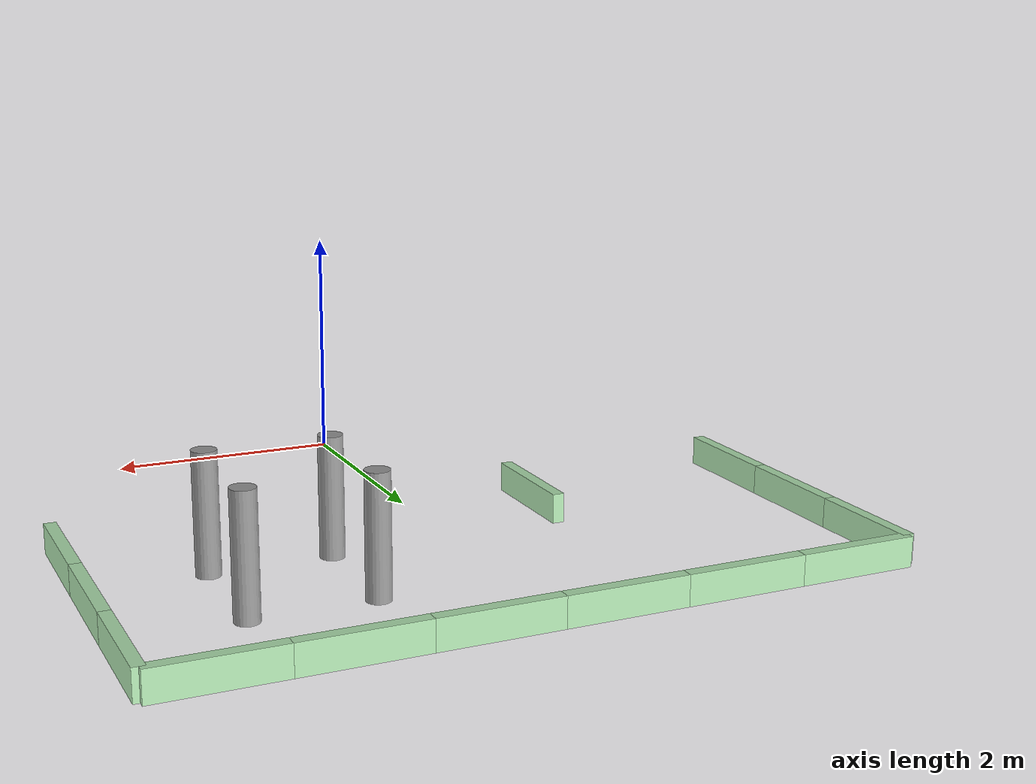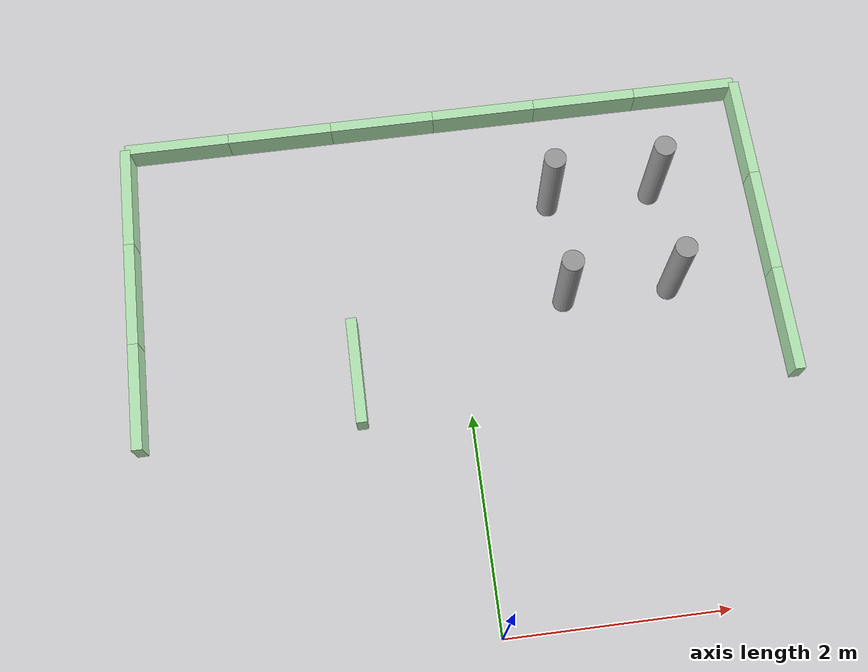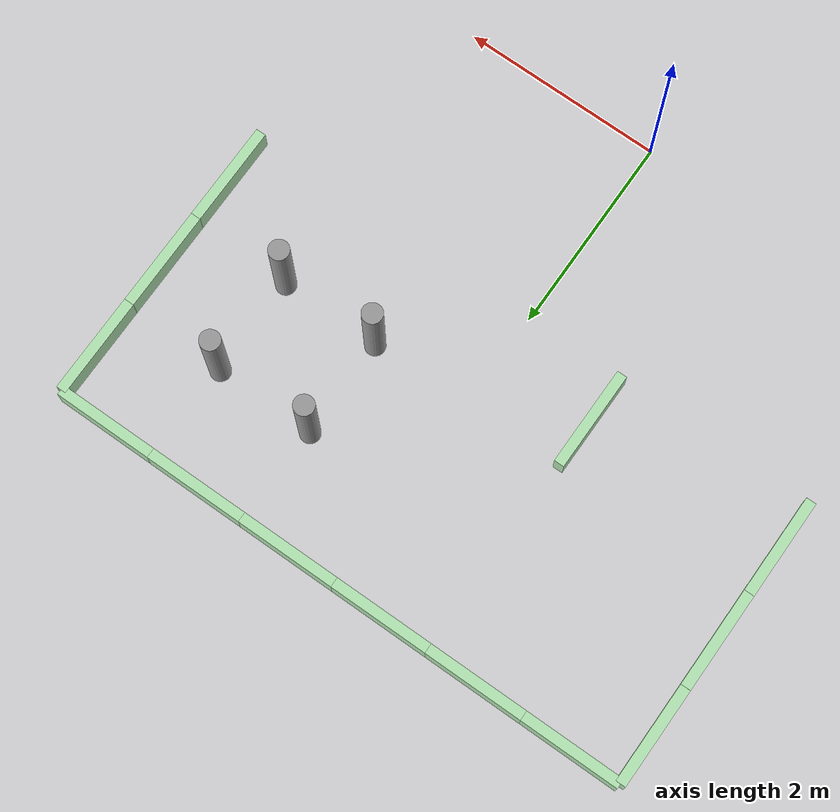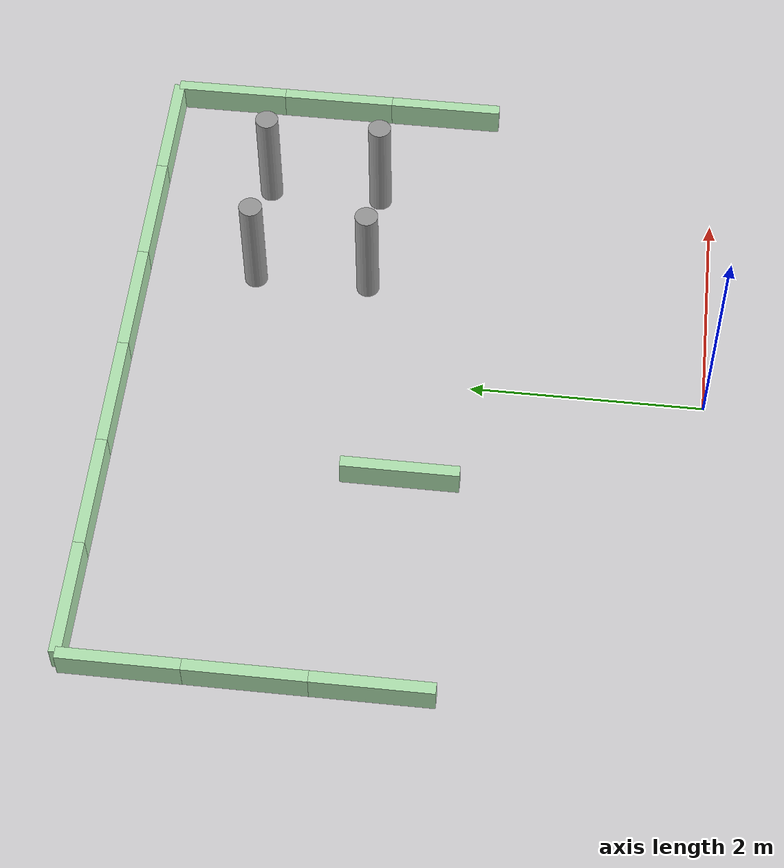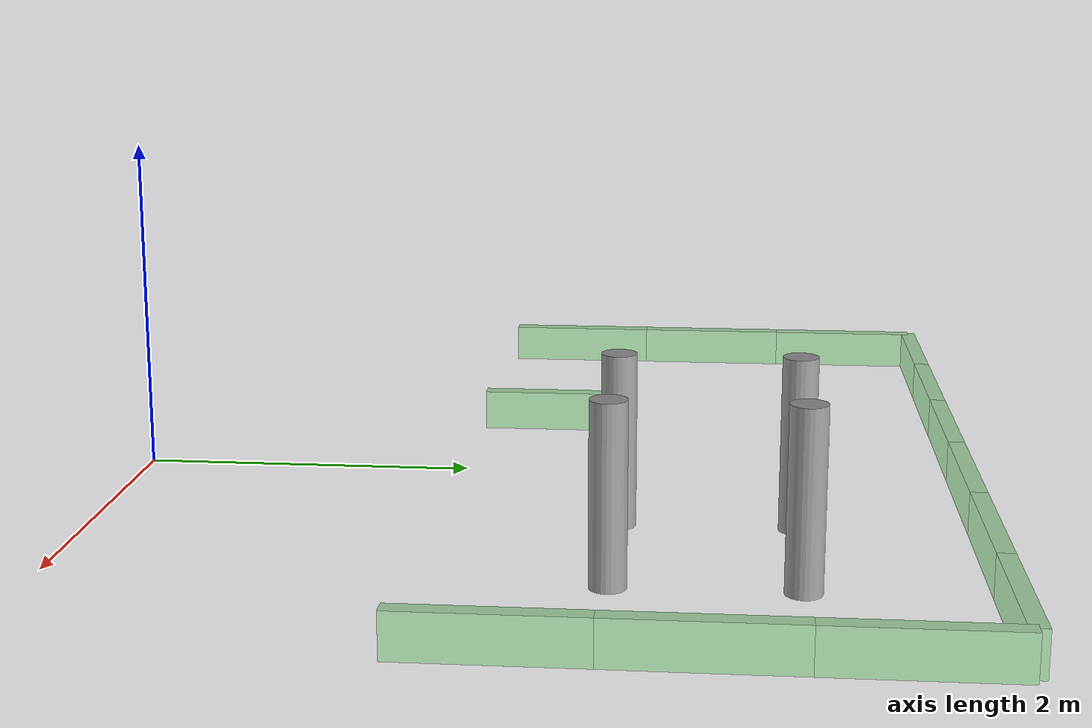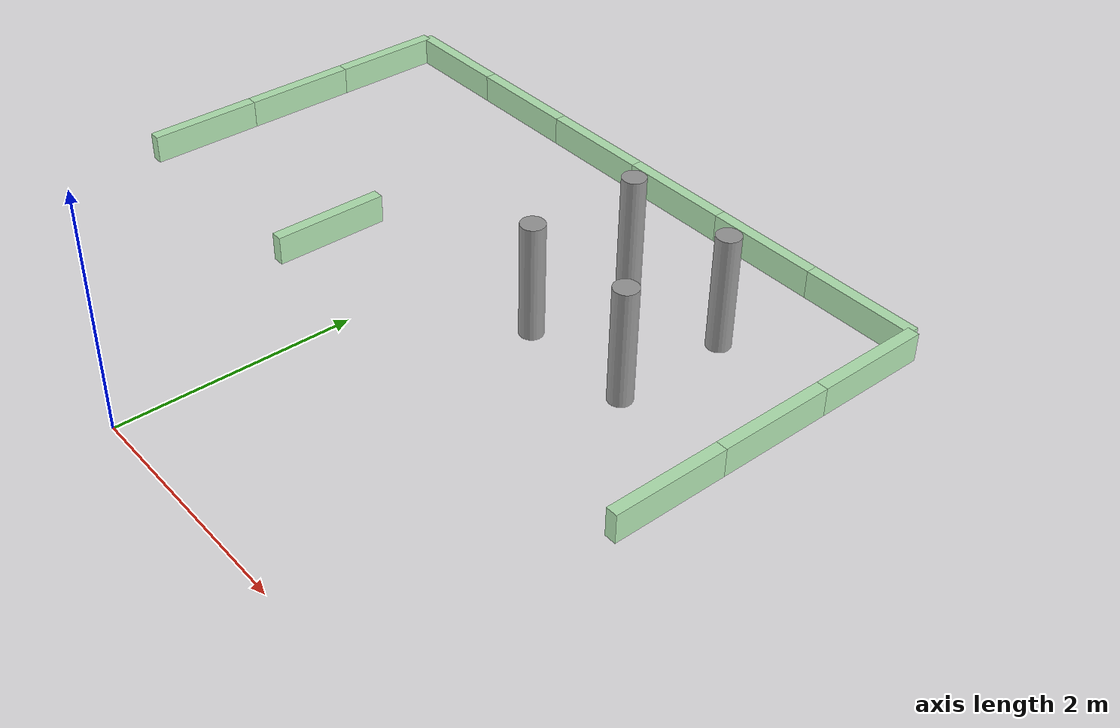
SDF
<sdf version="1.7">
 <world name="default">
  <model name="wall_100_25h_1_clone_9_clone_clone_9">
   <link name="link">
    <inertial>
     <mass>1</mass>
     <inertia>
      <ixx>0.166667</ixx>
      <ixy>0</ixy>
      <ixz>0</ixz>
      <iyy>0.166667</iyy>
      <iyz>0</iyz>
      <izz>0.166667</izz>
     </inertia>
    </inertial>
    <visual name="visual">
     <geometry><box><size>1 0.1 0.25</size></box></geometry>
     <material>
      <script><name>Gazebo/Grey</name><uri>file://media/materials/scripts/gazebo.material</uri></script>
      <ambient>0.3 0.5 0.3 1</ambient>
      <diffuse>0.7 0.9 0.7 1</diffuse>
      <specular>0.01 0.02 0.01 1</specular>
      <emissive>0 0 0 1</emissive>
      <lighting>1</lighting>
      <shader type="vertex"><normal_map>__default__</normal_map></shader>
     </material>
    </visual>
    <collision name="collision">
     <geometry><box><size>1 0.1 0.25</size></box></geometry>
     <surface>
      <friction>
       <ode><mu>1</mu><mu2>1</mu2><fdir1>0 0 0</fdir1><slip1>0</slip1><slip2>0</slip2></ode>
       <torsional>
        <coefficient>1</coefficient>
        <patch_radius>0</patch_radius>
        <surface_radius>0</surface_radius>
        <use_patch_radius>1</use_patch_radius>
        <ode><slip>0</slip></ode>
       </torsional>
      </friction>
      <bounce><restitution_coefficient>0</restitution_coefficient><threshold>1e+06</threshold></bounce>
      <contact>
       <collide_without_contact>0</collide_without_contact>
       <collide_without_contact_bitmask>1</collide_without_contact_bitmask>
       <collide_bitmask>1</collide_bitmask>
       <ode>
        <soft_cfm>0</soft_cfm>
        <soft_erp>0.2</soft_erp>
        <kp>1e+13</kp>
        <kd>1</kd>
        <max_vel>0.01</max_vel>
        <min_depth>0</min_depth>
       </ode>
       <bullet>
        <split_impulse>1</split_impulse>
        <split_impulse_penetration_threshold>-0.01</split_impulse_penetration_threshold>
        <soft_cfm>0</soft_cfm>
        <soft_erp>0.2</soft_erp>
        <kp>1e+13</kp>
        <kd>1</kd>
       </bullet>
      </contact>
     </surface>
    </collision>
   </link>
   <static>1</static>
   <pose>-1 2.5 0.125 0 0.000404 -1.57111</pose>
  </model>
  <model name="wall_100_25h_1_clone_9_clone_clone_13">
   <link name="link">
    <inertial>
     <mass>1</mass>
     <inertia>
      <ixx>0.166667</ixx>
      <ixy>0</ixy>
      <ixz>0</ixz>
      <iyy>0.166667</iyy>
      <iyz>0</iyz>
      <izz>0.166667</izz>
     </inertia>
    </inertial>
    <visual name="visual">
     <geometry><box><size>1 0.1 0.25</size></box></geometry>
     <material>
      <script><name>Gazebo/Grey</name><uri>file://media/materials/scripts/gazebo.material</uri></script>
      <ambient>0.3 0.5 0.3 1</ambient>
      <diffuse>0.7 0.9 0.7 1</diffuse>
      <specular>0.01 0.02 0.01 1</specular>
      <emissive>0 0 0 1</emissive>
      <lighting>1</lighting>
      <shader type="vertex"><normal_map>__default__</normal_map></shader>
     </material>
    </visual>
    <collision name="collision">
     <geometry><box><size>1 0.1 0.25</size></box></geometry>
     <surface>
      <friction>
       <ode><mu>1</mu><mu2>1</mu2><fdir1>0 0 0</fdir1><slip1>0</slip1><slip2>0</slip2></ode>
       <torsional>
        <coefficient>1</coefficient>
        <patch_radius>0</patch_radius>
        <surface_radius>0</surface_radius>
        <use_patch_radius>1</use_patch_radius>
        <ode><slip>0</slip></ode>
       </torsional>
      </friction>
      <bounce><restitution_coefficient>0</restitution_coefficient><threshold>1e+06</threshold></bounce>
      <contact>
       <collide_without_contact>0</collide_without_contact>
       <collide_without_contact_bitmask>1</collide_without_contact_bitmask>
       <collide_bitmask>1</collide_bitmask>
       <ode>
        <soft_cfm>0</soft_cfm>
        <soft_erp>0.2</soft_erp>
        <kp>1e+13</kp>
        <kd>1</kd>
        <max_vel>0.01</max_vel>
        <min_depth>0</min_depth>
       </ode>
       <bullet>
        <split_impulse>1</split_impulse>
        <split_impulse_penetration_threshold>-0.01</split_impulse_penetration_threshold>
        <soft_cfm>0</soft_cfm>
        <soft_erp>0.2</soft_erp>
        <kp>1e+13</kp>
        <kd>1</kd>
       </bullet>
      </contact>
     </surface>
    </collision>
   </link>
   <static>1</static>
   <pose>-3 2.5 0.125 0 0.000404 -1.57111</pose>
  </model>
  <model name="wall_100_25h_1_clone_9_clone_clone_15">
   <link name="link">
    <inertial>
     <mass>1</mass>
     <inertia>
      <ixx>0.166667</ixx>
      <ixy>0</ixy>
      <ixz>0</ixz>
      <iyy>0.166667</iyy>
      <iyz>0</iyz>
      <izz>0.166667</izz>
     </inertia>
    </inertial>
    <visual name="visual">
     <geometry><box><size>1 0.1 0.25</size></box></geometry>
     <material>
      <script><name>Gazebo/Grey</name><uri>file://media/materials/scripts/gazebo.material</uri></script>
      <ambient>0.3 0.5 0.3 1</ambient>
      <diffuse>0.7 0.9 0.7 1</diffuse>
      <specular>0.01 0.02 0.01 1</specular>
      <emissive>0 0 0 1</emissive>
      <lighting>1</lighting>
      <shader type="vertex"><normal_map>__default__</normal_map></shader>
     </material>
    </visual>
    <collision name="collision">
     <geometry><box><size>1 0.1 0.25</size></box></geometry>
     <surface>
      <friction>
       <ode><mu>1</mu><mu2>1</mu2><fdir1>0 0 0</fdir1><slip1>0</slip1><slip2>0</slip2></ode>
       <torsional>
        <coefficient>1</coefficient>
        <patch_radius>0</patch_radius>
        <surface_radius>0</surface_radius>
        <use_patch_radius>1</use_patch_radius>
        <ode><slip>0</slip></ode>
       </torsional>
      </friction>
      <bounce><restitution_coefficient>0</restitution_coefficient><threshold>1e+06</threshold></bounce>
      <contact>
       <collide_without_contact>0</collide_without_contact>
       <collide_without_contact_bitmask>1</collide_without_contact_bitmask>
       <collide_bitmask>1</collide_bitmask>
       <ode>
        <soft_cfm>0</soft_cfm>
        <soft_erp>0.2</soft_erp>
        <kp>1e+13</kp>
        <kd>1</kd>
        <max_vel>0.01</max_vel>
        <min_depth>0</min_depth>
       </ode>
       <bullet>
        <split_impulse>1</split_impulse>
        <split_impulse_penetration_threshold>-0.01</split_impulse_penetration_threshold>
        <soft_cfm>0</soft_cfm>
        <soft_erp>0.2</soft_erp>
        <kp>1e+13</kp>
        <kd>1</kd>
       </bullet>
      </contact>
     </surface>
    </collision>
   </link>
   <static>1</static>
   <pose>3 2.5 0.125 0 0.000404 -1.57111</pose>
  </model>
  <model name="wall_100_25h_1_clone_9_clone_clone_16">
   <link name="link">
    <inertial>
     <mass>1</mass>
     <inertia>
      <ixx>0.166667</ixx>
      <ixy>0</ixy>
      <ixz>0</ixz>
      <iyy>0.166667</iyy>
      <iyz>0</iyz>
      <izz>0.166667</izz>
     </inertia>
    </inertial>
    <visual name="visual">
     <geometry><box><size>1 0.1 0.25</size></box></geometry>
     <material>
      <script><name>Gazebo/Grey</name><uri>file://media/materials/scripts/gazebo.material</uri></script>
      <ambient>0.3 0.5 0.3 1</ambient>
      <diffuse>0.7 0.9 0.7 1</diffuse>
      <specular>0.01 0.02 0.01 1</specular>
      <emissive>0 0 0 1</emissive>
      <lighting>1</lighting>
      <shader type="vertex"><normal_map>__default__</normal_map></shader>
     </material>
    </visual>
    <collision name="collision">
     <geometry><box><size>1 0.1 0.25</size></box></geometry>
     <surface>
      <friction>
       <ode><mu>1</mu><mu2>1</mu2><fdir1>0 0 0</fdir1><slip1>0</slip1><slip2>0</slip2></ode>
       <torsional>
        <coefficient>1</coefficient>
        <patch_radius>0</patch_radius>
        <surface_radius>0</surface_radius>
        <use_patch_radius>1</use_patch_radius>
        <ode><slip>0</slip></ode>
       </torsional>
      </friction>
      <bounce><restitution_coefficient>0</restitution_coefficient><threshold>1e+06</threshold></bounce>
      <contact>
       <collide_without_contact>0</collide_without_contact>
       <collide_without_contact_bitmask>1</collide_without_contact_bitmask>
       <collide_bitmask>1</collide_bitmask>
       <ode>
        <soft_cfm>0</soft_cfm>
        <soft_erp>0.2</soft_erp>
        <kp>1e+13</kp>
        <kd>1</kd>
        <max_vel>0.01</max_vel>
        <min_depth>0</min_depth>
       </ode>
       <bullet>
        <split_impulse>1</split_impulse>
        <split_impulse_penetration_threshold>-0.01</split_impulse_penetration_threshold>
        <soft_cfm>0</soft_cfm>
        <soft_erp>0.2</soft_erp>
        <kp>1e+13</kp>
        <kd>1</kd>
       </bullet>
      </contact>
     </surface>
    </collision>
   </link>
   <static>1</static>
   <pose>3 3.5 0.125 0 0.000404 -1.57111</pose>
  </model>
  <model name="wall_100_25h_1_clone_9_clone_clone_17">
   <link name="link">
    <inertial>
     <mass>1</mass>
     <inertia>
      <ixx>0.166667</ixx>
      <ixy>0</ixy>
      <ixz>0</ixz>
      <iyy>0.166667</iyy>
      <iyz>0</iyz>
      <izz>0.166667</izz>
     </inertia>
    </inertial>
    <visual name="visual">
     <geometry><box><size>1 0.1 0.25</size></box></geometry>
     <material>
      <script><name>Gazebo/Grey</name><uri>file://media/materials/scripts/gazebo.material</uri></script>
      <ambient>0.3 0.5 0.3 1</ambient>
      <diffuse>0.7 0.9 0.7 1</diffuse>
      <specular>0.01 0.02 0.01 1</specular>
      <emissive>0 0 0 1</emissive>
      <lighting>1</lighting>
      <shader type="vertex"><normal_map>__default__</normal_map></shader>
     </material>
    </visual>
    <collision name="collision">
     <geometry><box><size>1 0.1 0.25</size></box></geometry>
     <surface>
      <friction>
       <ode><mu>1</mu><mu2>1</mu2><fdir1>0 0 0</fdir1><slip1>0</slip1><slip2>0</slip2></ode>
       <torsional>
        <coefficient>1</coefficient>
        <patch_radius>0</patch_radius>
        <surface_radius>0</surface_radius>
        <use_patch_radius>1</use_patch_radius>
        <ode><slip>0</slip></ode>
       </torsional>
      </friction>
      <bounce><restitution_coefficient>0</restitution_coefficient><threshold>1e+06</threshold></bounce>
      <contact>
       <collide_without_contact>0</collide_without_contact>
       <collide_without_contact_bitmask>1</collide_without_contact_bitmask>
       <collide_bitmask>1</collide_bitmask>
       <ode>
        <soft_cfm>0</soft_cfm>
        <soft_erp>0.2</soft_erp>
        <kp>1e+13</kp>
        <kd>1</kd>
        <max_vel>0.01</max_vel>
        <min_depth>0</min_depth>
       </ode>
       <bullet>
        <split_impulse>1</split_impulse>
        <split_impulse_penetration_threshold>-0.01</split_impulse_penetration_threshold>
        <soft_cfm>0</soft_cfm>
        <soft_erp>0.2</soft_erp>
        <kp>1e+13</kp>
        <kd>1</kd>
       </bullet>
      </contact>
     </surface>
    </collision>
   </link>
   <static>1</static>
   <pose>3 4.5 0.125 0 0.000404 -1.57111</pose>
  </model>
  <model name="wall_100_25h_1_clone_7_clone">
   <link name="link">
    <inertial>
     <mass>1</mass>
     <inertia>
      <ixx>0.166667</ixx>
      <ixy>0</ixy>
      <ixz>0</ixz>
      <iyy>0.166667</iyy>
      <iyz>0</iyz>
      <izz>0.166667</izz>
     </inertia>
    </inertial>
    <visual name="visual">
     <geometry><box><size>1 0.1 0.25</size></box></geometry>
     <material>
      <script><name>Gazebo/Grey</name><uri>file://media/materials/scripts/gazebo.material</uri></script>
      <ambient>0.3 0.5 0.3 1</ambient>
      <diffuse>0.7 0.9 0.7 1</diffuse>
      <specular>0.01 0.02 0.01 1</specular>
      <emissive>0 0 0 1</emissive>
      <lighting>1</lighting>
      <shader type="vertex"><normal_map>__default__</normal_map></shader>
     </material>
    </visual>
    <collision name="collision">
     <geometry><box><size>1 0.1 0.25</size></box></geometry>
     <surface>
      <friction>
       <ode><mu>1</mu><mu2>1</mu2><fdir1>0 0 0</fdir1><slip1>0</slip1><slip2>0</slip2></ode>
       <torsional>
        <coefficient>1</coefficient>
        <patch_radius>0</patch_radius>
        <surface_radius>0</surface_radius>
        <use_patch_radius>1</use_patch_radius>
        <ode><slip>0</slip></ode>
       </torsional>
      </friction>
      <bounce><restitution_coefficient>0</restitution_coefficient><threshold>1e+06</threshold></bounce>
      <contact>
       <collide_without_contact>0</collide_without_contact>
       <collide_without_contact_bitmask>1</collide_without_contact_bitmask>
       <collide_bitmask>1</collide_bitmask>
       <ode>
        <soft_cfm>0</soft_cfm>
        <soft_erp>0.2</soft_erp>
        <kp>1e+13</kp>
        <kd>1</kd>
        <max_vel>0.01</max_vel>
        <min_depth>0</min_depth>
       </ode>
       <bullet>
        <split_impulse>1</split_impulse>
        <split_impulse_penetration_threshold>-0.01</split_impulse_penetration_threshold>
        <soft_cfm>0</soft_cfm>
        <soft_erp>0.2</soft_erp>
        <kp>1e+13</kp>
        <kd>1</kd>
       </bullet>
      </contact>
     </surface>
    </collision>
   </link>
   <static>1</static>
   <pose>2.5 5 0.125 0.000404 -0 0</pose>
  </model>
  <model name="wall_100_25h_1_clone_7_clone_0">
   <link name="link">
    <inertial>
     <mass>1</mass>
     <inertia>
      <ixx>0.166667</ixx>
      <ixy>0</ixy>
      <ixz>0</ixz>
      <iyy>0.166667</iyy>
      <iyz>0</iyz>
      <izz>0.166667</izz>
     </inertia>
    </inertial>
    <visual name="visual">
     <geometry><box><size>1 0.1 0.25</size></box></geometry>
     <material>
      <script><name>Gazebo/Grey</name><uri>file://media/materials/scripts/gazebo.material</uri></script>
      <ambient>0.3 0.5 0.3 1</ambient>
      <diffuse>0.7 0.9 0.7 1</diffuse>
      <specular>0.01 0.02 0.01 1</specular>
      <emissive>0 0 0 1</emissive>
      <lighting>1</lighting>
      <shader type="vertex"><normal_map>__default__</normal_map></shader>
     </material>
    </visual>
    <collision name="collision">
     <geometry><box><size>1 0.1 0.25</size></box></geometry>
     <surface>
      <friction>
       <ode><mu>1</mu><mu2>1</mu2><fdir1>0 0 0</fdir1><slip1>0</slip1><slip2>0</slip2></ode>
       <torsional>
        <coefficient>1</coefficient>
        <patch_radius>0</patch_radius>
        <surface_radius>0</surface_radius>
        <use_patch_radius>1</use_patch_radius>
        <ode><slip>0</slip></ode>
       </torsional>
      </friction>
      <bounce><restitution_coefficient>0</restitution_coefficient><threshold>1e+06</threshold></bounce>
      <contact>
       <collide_without_contact>0</collide_without_contact>
       <collide_without_contact_bitmask>1</collide_without_contact_bitmask>
       <collide_bitmask>1</collide_bitmask>
       <ode>
        <soft_cfm>0</soft_cfm>
        <soft_erp>0.2</soft_erp>
        <kp>1e+13</kp>
        <kd>1</kd>
        <max_vel>0.01</max_vel>
        <min_depth>0</min_depth>
       </ode>
       <bullet>
        <split_impulse>1</split_impulse>
        <split_impulse_penetration_threshold>-0.01</split_impulse_penetration_threshold>
        <soft_cfm>0</soft_cfm>
        <soft_erp>0.2</soft_erp>
        <kp>1e+13</kp>
        <kd>1</kd>
       </bullet>
      </contact>
     </surface>
    </collision>
   </link>
   <static>1</static>
   <pose>1.5 5 0.125 0.000404 -0 0</pose>
  </model>
  <model name="wall_100_25h_1_clone_7_clone_1">
   <link name="link">
    <inertial>
     <mass>1</mass>
     <inertia>
      <ixx>0.166667</ixx>
      <ixy>0</ixy>
      <ixz>0</ixz>
      <iyy>0.166667</iyy>
      <iyz>0</iyz>
      <izz>0.166667</izz>
     </inertia>
    </inertial>
    <visual name="visual">
     <geometry><box><size>1 0.1 0.25</size></box></geometry>
     <material>
      <script><name>Gazebo/Grey</name><uri>file://media/materials/scripts/gazebo.material</uri></script>
      <ambient>0.3 0.5 0.3 1</ambient>
      <diffuse>0.7 0.9 0.7 1</diffuse>
      <specular>0.01 0.02 0.01 1</specular>
      <emissive>0 0 0 1</emissive>
      <lighting>1</lighting>
      <shader type="vertex"><normal_map>__default__</normal_map></shader>
     </material>
    </visual>
    <collision name="collision">
     <geometry><box><size>1 0.1 0.25</size></box></geometry>
     <surface>
      <friction>
       <ode><mu>1</mu><mu2>1</mu2><fdir1>0 0 0</fdir1><slip1>0</slip1><slip2>0</slip2></ode>
       <torsional>
        <coefficient>1</coefficient>
        <patch_radius>0</patch_radius>
        <surface_radius>0</surface_radius>
        <use_patch_radius>1</use_patch_radius>
        <ode><slip>0</slip></ode>
       </torsional>
      </friction>
      <bounce><restitution_coefficient>0</restitution_coefficient><threshold>1e+06</threshold></bounce>
      <contact>
       <collide_without_contact>0</collide_without_contact>
       <collide_without_contact_bitmask>1</collide_without_contact_bitmask>
       <collide_bitmask>1</collide_bitmask>
       <ode>
        <soft_cfm>0</soft_cfm>
        <soft_erp>0.2</soft_erp>
        <kp>1e+13</kp>
        <kd>1</kd>
        <max_vel>0.01</max_vel>
        <min_depth>0</min_depth>
       </ode>
       <bullet>
        <split_impulse>1</split_impulse>
        <split_impulse_penetration_threshold>-0.01</split_impulse_penetration_threshold>
        <soft_cfm>0</soft_cfm>
        <soft_erp>0.2</soft_erp>
        <kp>1e+13</kp>
        <kd>1</kd>
       </bullet>
      </contact>
     </surface>
    </collision>
   </link>
   <static>1</static>
   <pose>0.5 5 0.125 0.000404 -0 0</pose>
  </model>
  <model name="wall_100_25h_1_clone_7_clone_2">
   <link name="link">
    <inertial>
     <mass>1</mass>
     <inertia>
      <ixx>0.166667</ixx>
      <ixy>0</ixy>
      <ixz>0</ixz>
      <iyy>0.166667</iyy>
      <iyz>0</iyz>
      <izz>0.166667</izz>
     </inertia>
    </inertial>
    <visual name="visual">
     <geometry><box><size>1 0.1 0.25</size></box></geometry>
     <material>
      <script><name>Gazebo/Grey</name><uri>file://media/materials/scripts/gazebo.material</uri></script>
      <ambient>0.3 0.5 0.3 1</ambient>
      <diffuse>0.7 0.9 0.7 1</diffuse>
      <specular>0.01 0.02 0.01 1</specular>
      <emissive>0 0 0 1</emissive>
      <lighting>1</lighting>
      <shader type="vertex"><normal_map>__default__</normal_map></shader>
     </material>
    </visual>
    <collision name="collision">
     <geometry><box><size>1 0.1 0.25</size></box></geometry>
     <surface>
      <friction>
       <ode><mu>1</mu><mu2>1</mu2><fdir1>0 0 0</fdir1><slip1>0</slip1><slip2>0</slip2></ode>
       <torsional>
        <coefficient>1</coefficient>
        <patch_radius>0</patch_radius>
        <surface_radius>0</surface_radius>
        <use_patch_radius>1</use_patch_radius>
        <ode><slip>0</slip></ode>
       </torsional>
      </friction>
      <bounce><restitution_coefficient>0</restitution_coefficient><threshold>1e+06</threshold></bounce>
      <contact>
       <collide_without_contact>0</collide_without_contact>
       <collide_without_contact_bitmask>1</collide_without_contact_bitmask>
       <collide_bitmask>1</collide_bitmask>
       <ode>
        <soft_cfm>0</soft_cfm>
        <soft_erp>0.2</soft_erp>
        <kp>1e+13</kp>
        <kd>1</kd>
        <max_vel>0.01</max_vel>
        <min_depth>0</min_depth>
       </ode>
       <bullet>
        <split_impulse>1</split_impulse>
        <split_impulse_penetration_threshold>-0.01</split_impulse_penetration_threshold>
        <soft_cfm>0</soft_cfm>
        <soft_erp>0.2</soft_erp>
        <kp>1e+13</kp>
        <kd>1</kd>
       </bullet>
      </contact>
     </surface>
    </collision>
   </link>
   <static>1</static>
   <pose>-0.5 5 0.125 0.000404 -0 0</pose>
  </model>
  <model name="wall_100_25h_1_clone_7_clone_3">
   <link name="link">
    <inertial>
     <mass>1</mass>
     <inertia>
      <ixx>0.166667</ixx>
      <ixy>0</ixy>
      <ixz>0</ixz>
      <iyy>0.166667</iyy>
      <iyz>0</iyz>
      <izz>0.166667</izz>
     </inertia>
    </inertial>
    <visual name="visual">
     <geometry><box><size>1 0.1 0.25</size></box></geometry>
     <material>
      <script><name>Gazebo/Grey</name><uri>file://media/materials/scripts/gazebo.material</uri></script>
      <ambient>0.3 0.5 0.3 1</ambient>
      <diffuse>0.7 0.9 0.7 1</diffuse>
      <specular>0.01 0.02 0.01 1</specular>
      <emissive>0 0 0 1</emissive>
      <lighting>1</lighting>
      <shader type="vertex"><normal_map>__default__</normal_map></shader>
     </material>
    </visual>
    <collision name="collision">
     <geometry><box><size>1 0.1 0.25</size></box></geometry>
     <surface>
      <friction>
       <ode><mu>1</mu><mu2>1</mu2><fdir1>0 0 0</fdir1><slip1>0</slip1><slip2>0</slip2></ode>
       <torsional>
        <coefficient>1</coefficient>
        <patch_radius>0</patch_radius>
        <surface_radius>0</surface_radius>
        <use_patch_radius>1</use_patch_radius>
        <ode><slip>0</slip></ode>
       </torsional>
      </friction>
      <bounce><restitution_coefficient>0</restitution_coefficient><threshold>1e+06</threshold></bounce>
      <contact>
       <collide_without_contact>0</collide_without_contact>
       <collide_without_contact_bitmask>1</collide_without_contact_bitmask>
       <collide_bitmask>1</collide_bitmask>
       <ode>
        <soft_cfm>0</soft_cfm>
        <soft_erp>0.2</soft_erp>
        <kp>1e+13</kp>
        <kd>1</kd>
        <max_vel>0.01</max_vel>
        <min_depth>0</min_depth>
       </ode>
       <bullet>
        <split_impulse>1</split_impulse>
        <split_impulse_penetration_threshold>-0.01</split_impulse_penetration_threshold>
        <soft_cfm>0</soft_cfm>
        <soft_erp>0.2</soft_erp>
        <kp>1e+13</kp>
        <kd>1</kd>
       </bullet>
      </contact>
     </surface>
    </collision>
   </link>
   <static>1</static>
   <pose>-1.5 5 0.125 0.000404 -0 0</pose>
  </model>
  <model name="wall_100_25h_1_clone_7_clone_4">
   <link name="link">
    <inertial>
     <mass>1</mass>
     <inertia>
      <ixx>0.166667</ixx>
      <ixy>0</ixy>
      <ixz>0</ixz>
      <iyy>0.166667</iyy>
      <iyz>0</iyz>
      <izz>0.166667</izz>
     </inertia>
    </inertial>
    <visual name="visual">
     <geometry><box><size>1 0.1 0.25</size></box></geometry>
     <material>
      <script><name>Gazebo/Grey</name><uri>file://media/materials/scripts/gazebo.material</uri></script>
      <ambient>0.3 0.5 0.3 1</ambient>
      <diffuse>0.7 0.9 0.7 1</diffuse>
      <specular>0.01 0.02 0.01 1</specular>
      <emissive>0 0 0 1</emissive>
      <lighting>1</lighting>
      <shader type="vertex"><normal_map>__default__</normal_map></shader>
     </material>
    </visual>
    <collision name="collision">
     <geometry><box><size>1 0.1 0.25</size></box></geometry>
     <surface>
      <friction>
       <ode><mu>1</mu><mu2>1</mu2><fdir1>0 0 0</fdir1><slip1>0</slip1><slip2>0</slip2></ode>
       <torsional>
        <coefficient>1</coefficient>
        <patch_radius>0</patch_radius>
        <surface_radius>0</surface_radius>
        <use_patch_radius>1</use_patch_radius>
        <ode><slip>0</slip></ode>
       </torsional>
      </friction>
      <bounce><restitution_coefficient>0</restitution_coefficient><threshold>1e+06</threshold></bounce>
      <contact>
       <collide_without_contact>0</collide_without_contact>
       <collide_without_contact_bitmask>1</collide_without_contact_bitmask>
       <collide_bitmask>1</collide_bitmask>
       <ode>
        <soft_cfm>0</soft_cfm>
        <soft_erp>0.2</soft_erp>
        <kp>1e+13</kp>
        <kd>1</kd>
        <max_vel>0.01</max_vel>
        <min_depth>0</min_depth>
       </ode>
       <bullet>
        <split_impulse>1</split_impulse>
        <split_impulse_penetration_threshold>-0.01</split_impulse_penetration_threshold>
        <soft_cfm>0</soft_cfm>
        <soft_erp>0.2</soft_erp>
        <kp>1e+13</kp>
        <kd>1</kd>
       </bullet>
      </contact>
     </surface>
    </collision>
   </link>
   <static>1</static>
   <pose>-2.5 5 0.125 0.000404 -0 0</pose>
  </model>
  <model name="wall_100_25h_1_clone_9_clone_clone_13_clone">
   <link name="link">
    <inertial>
     <mass>1</mass>
     <inertia>
      <ixx>0.166667</ixx>
      <ixy>0</ixy>
      <ixz>0</ixz>
      <iyy>0.166667</iyy>
      <iyz>0</iyz>
      <izz>0.166667</izz>
     </inertia>
    </inertial>
    <visual name="visual">
     <geometry><box><size>1 0.1 0.25</size></box></geometry>
     <material>
      <script><name>Gazebo/Grey</name><uri>file://media/materials/scripts/gazebo.material</uri></script>
      <ambient>0.3 0.5 0.3 1</ambient>
      <diffuse>0.7 0.9 0.7 1</diffuse>
      <specular>0.01 0.02 0.01 1</specular>
      <emissive>0 0 0 1</emissive>
      <lighting>1</lighting>
      <shader type="vertex"><normal_map>__default__</normal_map></shader>
     </material>
    </visual>
    <collision name="collision">
     <geometry><box><size>1 0.1 0.25</size></box></geometry>
     <surface>
      <friction>
       <ode><mu>1</mu><mu2>1</mu2><fdir1>0 0 0</fdir1><slip1>0</slip1><slip2>0</slip2></ode>
       <torsional>
        <coefficient>1</coefficient>
        <patch_radius>0</patch_radius>
        <surface_radius>0</surface_radius>
        <use_patch_radius>1</use_patch_radius>
        <ode><slip>0</slip></ode>
       </torsional>
      </friction>
      <bounce><restitution_coefficient>0</restitution_coefficient><threshold>1e+06</threshold></bounce>
      <contact>
       <collide_without_contact>0</collide_without_contact>
       <collide_without_contact_bitmask>1</collide_without_contact_bitmask>
       <collide_bitmask>1</collide_bitmask>
       <ode>
        <soft_cfm>0</soft_cfm>
        <soft_erp>0.2</soft_erp>
        <kp>1e+13</kp>
        <kd>1</kd>
        <max_vel>0.01</max_vel>
        <min_depth>0</min_depth>
       </ode>
       <bullet>
        <split_impulse>1</split_impulse>
        <split_impulse_penetration_threshold>-0.01</split_impulse_penetration_threshold>
        <soft_cfm>0</soft_cfm>
        <soft_erp>0.2</soft_erp>
        <kp>1e+13</kp>
        <kd>1</kd>
       </bullet>
      </contact>
     </surface>
    </collision>
   </link>
   <static>1</static>
   <pose>-3 3.5 0.125 0 0.000404 -1.57111</pose>
  </model>
  <model name="wall_100_25h_1_clone_9_clone_clone_13_clone_0">
   <link name="link">
    <inertial>
     <mass>1</mass>
     <inertia>
      <ixx>0.166667</ixx>
      <ixy>0</ixy>
      <ixz>0</ixz>
      <iyy>0.166667</iyy>
      <iyz>0</iyz>
      <izz>0.166667</izz>
     </inertia>
    </inertial>
    <visual name="visual">
     <geometry><box><size>1 0.1 0.25</size></box></geometry>
     <material>
      <script><name>Gazebo/Grey</name><uri>file://media/materials/scripts/gazebo.material</uri></script>
      <ambient>0.3 0.5 0.3 1</ambient>
      <diffuse>0.7 0.9 0.7 1</diffuse>
      <specular>0.01 0.02 0.01 1</specular>
      <emissive>0 0 0 1</emissive>
      <lighting>1</lighting>
      <shader type="vertex"><normal_map>__default__</normal_map></shader>
     </material>
    </visual>
    <collision name="collision">
     <geometry><box><size>1 0.1 0.25</size></box></geometry>
     <surface>
      <friction>
       <ode><mu>1</mu><mu2>1</mu2><fdir1>0 0 0</fdir1><slip1>0</slip1><slip2>0</slip2></ode>
       <torsional>
        <coefficient>1</coefficient>
        <patch_radius>0</patch_radius>
        <surface_radius>0</surface_radius>
        <use_patch_radius>1</use_patch_radius>
        <ode><slip>0</slip></ode>
       </torsional>
      </friction>
      <bounce><restitution_coefficient>0</restitution_coefficient><threshold>1e+06</threshold></bounce>
      <contact>
       <collide_without_contact>0</collide_without_contact>
       <collide_without_contact_bitmask>1</collide_without_contact_bitmask>
       <collide_bitmask>1</collide_bitmask>
       <ode>
        <soft_cfm>0</soft_cfm>
        <soft_erp>0.2</soft_erp>
        <kp>1e+13</kp>
        <kd>1</kd>
        <max_vel>0.01</max_vel>
        <min_depth>0</min_depth>
       </ode>
       <bullet>
        <split_impulse>1</split_impulse>
        <split_impulse_penetration_threshold>-0.01</split_impulse_penetration_threshold>
        <soft_cfm>0</soft_cfm>
        <soft_erp>0.2</soft_erp>
        <kp>1e+13</kp>
        <kd>1</kd>
       </bullet>
      </contact>
     </surface>
    </collision>
   </link>
   <static>1</static>
   <pose>-3 4.5 0.125 0 0.000404 -1.57111</pose>
  </model>
  <model name="maze_new">
   <link name="link_1">
    <inertial>
     <mass>1</mass>
     <inertia><ixx>0.145833</ixx><ixy>0</ixy><ixz>0</ixz><iyy>0.145833</iyy><iyz>0</iyz><izz>0.125</izz></inertia>
    </inertial>
    <pose>-0.5 -0.5 0 0 -0 0</pose>
    <visual name="visual">
     <geometry><cylinder><radius>0.1</radius><length>1</length></cylinder></geometry>
     <material>
      <lighting>1</lighting>
      <script><uri>file://media/materials/scripts/gazebo.material</uri><name>Gazebo/Grey</name></script>
      <shader type="pixel"><normal_map>__default__</normal_map></shader>
      <ambient>0.3 0.3 0.3 1</ambient>
      <diffuse>0.7 0.7 0.7 1</diffuse>
      <specular>0.01 0.01 0.01 1</specular>
      <emissive>0 0 0 1</emissive>
     </material>
    </visual>
    <collision name="collision">
     <geometry><cylinder><radius>0.1</radius><length>1</length></cylinder></geometry>
     <surface>
      <friction>
       <ode><mu>1</mu><mu2>1</mu2><fdir1>0 0 0</fdir1><slip1>0</slip1><slip2>0</slip2></ode>
       <torsional>
        <coefficient>1</coefficient>
        <patch_radius>0</patch_radius>
        <surface_radius>0</surface_radius>
        <use_patch_radius>1</use_patch_radius>
        <ode><slip>0</slip></ode>
       </torsional>
      </friction>
      <bounce><restitution_coefficient>0</restitution_coefficient><threshold>1e+06</threshold></bounce>
      <contact>
       <collide_without_contact>0</collide_without_contact>
       <collide_without_contact_bitmask>1</collide_without_contact_bitmask>
       <collide_bitmask>1</collide_bitmask>
       <ode>
        <soft_cfm>0</soft_cfm>
        <soft_erp>0.2</soft_erp>
        <kp>1e+13</kp>
        <kd>1</kd>
        <max_vel>0.01</max_vel>
        <min_depth>0</min_depth>
       </ode>
       <bullet>
        <split_impulse>1</split_impulse>
        <split_impulse_penetration_threshold>-0.01</split_impulse_penetration_threshold>
        <soft_cfm>0</soft_cfm>
        <soft_erp>0.2</soft_erp>
        <kp>1e+13</kp>
        <kd>1</kd>
       </bullet>
      </contact>
     </surface>
    </collision>
   </link>
   <link name="link_1_clone">
    <inertial>
     <mass>1</mass>
     <inertia><ixx>0.145833</ixx><ixy>0</ixy><ixz>0</ixz><iyy>0.145833</iyy><iyz>0</iyz><izz>0.125</izz></inertia>
    </inertial>
    <pose>-0.5 0.5 0 0 -0 0</pose>
    <visual name="visual">
     <geometry><cylinder><radius>0.1</radius><length>1</length></cylinder></geometry>
     <material>
      <lighting>1</lighting>
      <script><uri>file://media/materials/scripts/gazebo.material</uri><name>Gazebo/Grey</name></script>
      <shader type="pixel"><normal_map>__default__</normal_map></shader>
      <ambient>0.3 0.3 0.3 1</ambient>
      <diffuse>0.7 0.7 0.7 1</diffuse>
      <specular>0.01 0.01 0.01 1</specular>
      <emissive>0 0 0 1</emissive>
     </material>
    </visual>
    <collision name="collision">
     <geometry><cylinder><radius>0.1</radius><length>1</length></cylinder></geometry>
     <surface>
      <friction>
       <ode><mu>1</mu><mu2>1</mu2><fdir1>0 0 0</fdir1><slip1>0</slip1><slip2>0</slip2></ode>
       <torsional>
        <coefficient>1</coefficient>
        <patch_radius>0</patch_radius>
        <surface_radius>0</surface_radius>
        <use_patch_radius>1</use_patch_radius>
        <ode><slip>0</slip></ode>
       </torsional>
      </friction>
      <bounce><restitution_coefficient>0</restitution_coefficient><threshold>1e+06</threshold></bounce>
      <contact>
       <collide_without_contact>0</collide_without_contact>
       <collide_without_contact_bitmask>1</collide_without_contact_bitmask>
       <collide_bitmask>1</collide_bitmask>
       <ode>
        <soft_cfm>0</soft_cfm>
        <soft_erp>0.2</soft_erp>
        <kp>1e+13</kp>
        <kd>1</kd>
        <max_vel>0.01</max_vel>
        <min_depth>0</min_depth>
       </ode>
       <bullet>
        <split_impulse>1</split_impulse>
        <split_impulse_penetration_threshold>-0.01</split_impulse_penetration_threshold>
        <soft_cfm>0</soft_cfm>
        <soft_erp>0.2</soft_erp>
        <kp>1e+13</kp>
        <kd>1</kd>
       </bullet>
      </contact>
     </surface>
    </collision>
   </link>
   <link name="link_1_clone_0">
    <inertial>
     <mass>1</mass>
     <inertia><ixx>0.145833</ixx><ixy>0</ixy><ixz>0</ixz><iyy>0.145833</iyy><iyz>0</iyz><izz>0.125</izz></inertia>
    </inertial>
    <pose>0.5 -0.5 0 0 -0 0</pose>
    <visual name="visual">
     <geometry><cylinder><radius>0.1</radius><length>1</length></cylinder></geometry>
     <material>
      <lighting>1</lighting>
      <script><uri>file://media/materials/scripts/gazebo.material</uri><name>Gazebo/Grey</name></script>
      <shader type="pixel"><normal_map>__default__</normal_map></shader>
      <ambient>0.3 0.3 0.3 1</ambient>
      <diffuse>0.7 0.7 0.7 1</diffuse>
      <specular>0.01 0.01 0.01 1</specular>
      <emissive>0 0 0 1</emissive>
     </material>
    </visual>
    <collision name="collision">
     <geometry><cylinder><radius>0.1</radius><length>1</length></cylinder></geometry>
     <surface>
      <friction>
       <ode><mu>1</mu><mu2>1</mu2><fdir1>0 0 0</fdir1><slip1>0</slip1><slip2>0</slip2></ode>
       <torsional>
        <coefficient>1</coefficient>
        <patch_radius>0</patch_radius>
        <surface_radius>0</surface_radius>
        <use_patch_radius>1</use_patch_radius>
        <ode><slip>0</slip></ode>
       </torsional>
      </friction>
      <bounce><restitution_coefficient>0</restitution_coefficient><threshold>1e+06</threshold></bounce>
      <contact>
       <collide_without_contact>0</collide_without_contact>
       <collide_without_contact_bitmask>1</collide_without_contact_bitmask>
       <collide_bitmask>1</collide_bitmask>
       <ode>
        <soft_cfm>0</soft_cfm>
        <soft_erp>0.2</soft_erp>
        <kp>1e+13</kp>
        <kd>1</kd>
        <max_vel>0.01</max_vel>
        <min_depth>0</min_depth>
       </ode>
       <bullet>
        <split_impulse>1</split_impulse>
        <split_impulse_penetration_threshold>-0.01</split_impulse_penetration_threshold>
        <soft_cfm>0</soft_cfm>
        <soft_erp>0.2</soft_erp>
        <kp>1e+13</kp>
        <kd>1</kd>
       </bullet>
      </contact>
     </surface>
    </collision>
   </link>
   <link name="link_1_clone_1">
    <inertial>
     <mass>1</mass>
     <inertia><ixx>0.145833</ixx><ixy>0</ixy><ixz>0</ixz><iyy>0.145833</iyy><iyz>0</iyz><izz>0.125</izz></inertia>
    </inertial>
    <pose>0.5 0.5 0 0 -0 0</pose>
    <visual name="visual">
     <geometry><cylinder><radius>0.1</radius><length>1</length></cylinder></geometry>
     <material>
      <lighting>1</lighting>
      <script><uri>file://media/materials/scripts/gazebo.material</uri><name>Gazebo/Grey</name></script>
      <shader type="pixel"><normal_map>__default__</normal_map></shader>
      <ambient>0.3 0.3 0.3 1</ambient>
      <diffuse>0.7 0.7 0.7 1</diffuse>
      <specular>0.01 0.01 0.01 1</specular>
      <emissive>0 0 0 1</emissive>
     </material>
    </visual>
    <collision name="collision">
     <geometry><cylinder><radius>0.1</radius><length>1</length></cylinder></geometry>
     <surface>
      <friction>
       <ode><mu>1</mu><mu2>1</mu2><fdir1>0 0 0</fdir1><slip1>0</slip1><slip2>0</slip2></ode>
       <torsional>
        <coefficient>1</coefficient>
        <patch_radius>0</patch_radius>
        <surface_radius>0</surface_radius>
        <use_patch_radius>1</use_patch_radius>
        <ode><slip>0</slip></ode>
       </torsional>
      </friction>
      <bounce><restitution_coefficient>0</restitution_coefficient><threshold>1e+06</threshold></bounce>
      <contact>
       <collide_without_contact>0</collide_without_contact>
       <collide_without_contact_bitmask>1</collide_without_contact_bitmask>
       <collide_bitmask>1</collide_bitmask>
       <ode>
        <soft_cfm>0</soft_cfm>
        <soft_erp>0.2</soft_erp>
        <kp>1e+13</kp>
        <kd>1</kd>
        <max_vel>0.01</max_vel>
        <min_depth>0</min_depth>
       </ode>
       <bullet>
        <split_impulse>1</split_impulse>
        <split_impulse_penetration_threshold>-0.01</split_impulse_penetration_threshold>
        <soft_cfm>0</soft_cfm>
        <soft_erp>0.2</soft_erp>
        <kp>1e+13</kp>
        <kd>1</kd>
       </bullet>
      </contact>
     </surface>
    </collision>
   </link>
   <static>0</static>
   <pose>1.5 3.5 0.5 0 -0 0</pose>
  </model>
 </world>
</sdf>
